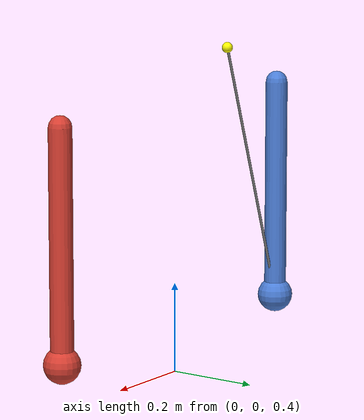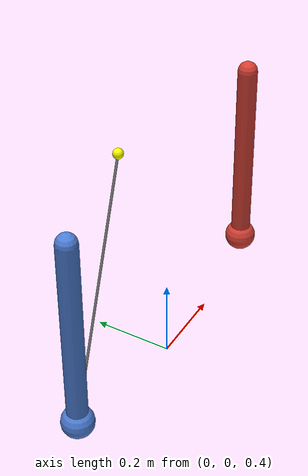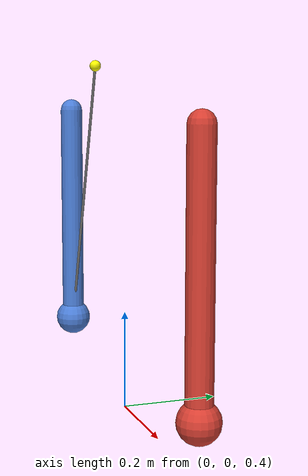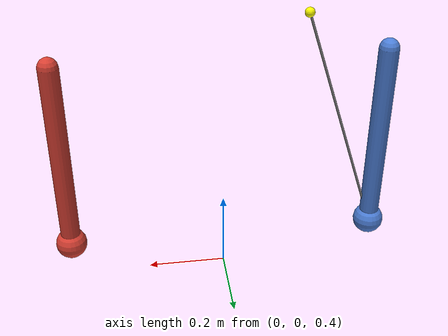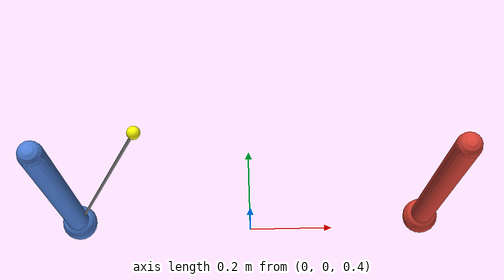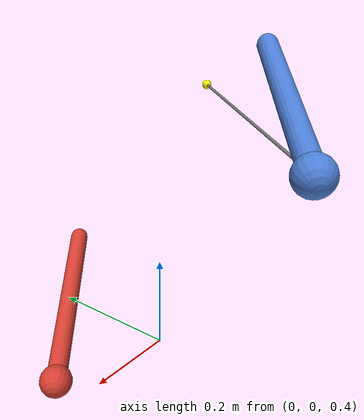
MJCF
<mujoco model="tendon-actuator">
  <option gravity="0 0 -9.81" timestep="0.002"/>
  <compiler angle="radian"/>

  <worldbody>
    <!-- Left arm: tendon-driven -->
    <!-- Anchor offset to the right of the pivot — creates a moment arm -->
    <site name="L_anchor" pos="-0.2 0 1.1" size="0.012" rgba="1 1 0 1"/>
    <body name="L_arm" pos="-0.4 0 1.0">
      <joint name="L_hinge" type="hinge" axis="0 1 0" damping="1.5"/>
      <geom name="L_rod" type="capsule" fromto="0 0 0 0 0 -0.5"
            size="0.025" mass="1.0" rgba="0.3 0.5 0.85 1"/>
      <body name="L_tip" pos="0 0 -0.5">
        <geom name="L_ball" type="sphere" size="0.04" mass="0.3"
              rgba="0.3 0.5 0.85 1"/>
        <site name="L_tip_site" pos="0 0 0" size="0.012" rgba="1 1 0 1"/>
      </body>
    </body>

    <!-- Right arm: joint-driven (identical geometry) -->
    <body name="R_arm" pos="0.4 0 1.0">
      <joint name="R_hinge" type="hinge" axis="0 1 0" damping="1.5"/>
      <geom name="R_rod" type="capsule" fromto="0 0 0 0 0 -0.5"
            size="0.025" mass="1.0" rgba="0.85 0.25 0.2 1"/>
      <body name="R_tip" pos="0 0 -0.5">
        <geom name="R_ball" type="sphere" size="0.04" mass="0.3"
              rgba="0.85 0.25 0.2 1"/>
      </body>
    </body>
  </worldbody>

  <tendon>
    <spatial name="L_tendon">
      <site site="L_anchor"/>
      <site site="L_tip_site"/>
    </spatial>
  </tendon>

  <actuator>
    <motor name="tendon_motor" tendon="L_tendon" gear="30"/>
    <motor name="joint_motor" joint="R_hinge" gear="3"/>
  </actuator>

  <sensor>
    <tendonpos name="L_ten_pos" tendon="L_tendon"/>
    <jointpos name="L_angle" joint="L_hinge"/>
    <jointpos name="R_angle" joint="R_hinge"/>
  </sensor>
</mujoco>
